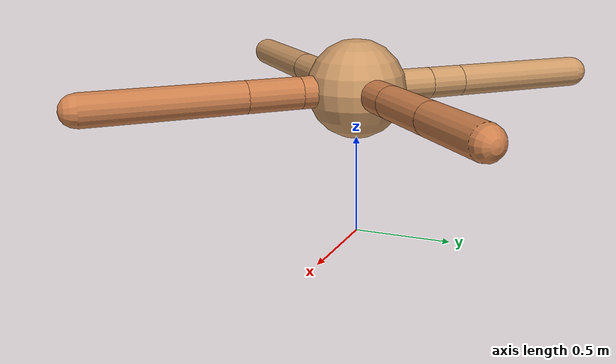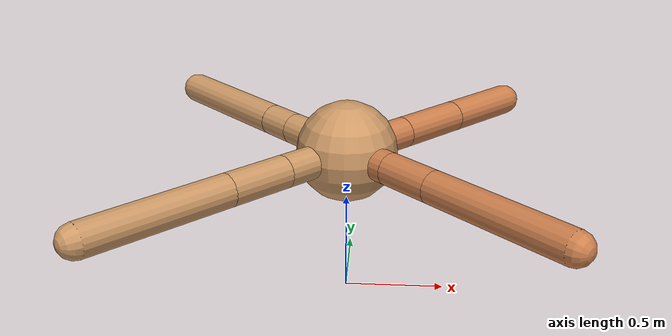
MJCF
<mujoco model="ant">
  <compiler angle="degree" coordinate="local" inertiafromgeom="true" />
  <option integrator="RK4" timestep="0.01" />
  <custom>
    <numeric data="0.0 0.0 0.55 1.0 0.0 0.0 0.0 0.0 1.0 0.0 -1.0 0.0 -1.0 0.0 1.0" name="init_qpos" />
  </custom>
  <default>
    <joint armature="1" damping="1" limited="true" />
    <geom conaffinity="0" condim="3" density="5.0" friction="1.5 0.1 0.1" margin="0.01" rgba="0.8 0.6 0.4 1" />
  </default>
  <worldbody>
    <body name="torso" pos="0 0 0.75">
      <geom name="torso_geom" pos="0 0 0" size="0.25" type="sphere" />

      <body name="front_left_leg" pos="0 0 0">
        <geom fromto="0.0 0.0 0.0 0.2756044750866342 0.2756044750866342 0.0" name="aux_1_geom" size="0.08" type="capsule" rgba=".8 .5 .3 1" />
        <body name="aux_1" pos="0.2756044750866342 0.2756044750866342 0.0">
          <joint axis="0 0 1" name="hip_1" pos="0.0 0.0 0.0" range="-40 40" type="hinge" />
          <geom fromto="0.0 0.0 0.0 0.26281574916136974 0.26281574916136974 0.0" name="left_leg_geom" size="0.08" type="capsule" rgba=".8 .5 .3 1" />
          <body pos="0.26281574916136974 0.26281574916136974 0.0" name="front_left_foot">
            <joint axis="-1 1 0" name="ankle_1" pos="0.0 0.0 0.0" range="30 100" type="hinge" />
            <geom fromto="0.0 0.0 0.0 0.30635514226499394 0.30635514226499394 0.0" name="left_ankle_geom" size="0.08" type="capsule" rgba=".8 .5 .3 1" />
          </body>
        </body>
      </body>
      <body name="front_right_leg" pos="0 0 0">
        <geom fromto="0.0 0.0 0.0 -0.28629753425841636 0.28629753425841636 0.0" name="aux_2_geom" size="0.08" type="capsule" />
        <body name="aux_2" pos="-0.28629753425841636 0.28629753425841636 0.0">
          <joint axis="0 0 1" name="hip_2" pos="0.0 0.0 0.0" range="-40 40" type="hinge" />
          <geom fromto="0.0 0.0 0.0 -0.12861113859641501 0.12861113859641501 0.0" name="right_leg_geom" size="0.08" type="capsule" />
          <body pos="-0.12861113859641501 0.12861113859641501 0.0" name="front_right_foot">
            <joint axis="1 1 0" name="ankle_2" pos="0.0 0.0 0.0" range="-100 -30" type="hinge" />
            <geom fromto="0.0 0.0 0.0 -0.5132246866809007 0.5132246866809007 0.0" name="right_ankle_geom" size="0.08" type="capsule" />
          </body>
        </body>
      </body>
      <body name="left_back_leg" pos="0 0 0">
        <geom fromto="0.0 0.0 0.0 -0.27913389625838864 -0.27913389625838864 0.0" name="aux_3_geom" size="0.08" type="capsule" />
        <body name="aux_3" pos="-0.27913389625838864 -0.27913389625838864 0.0">
          <joint axis="0 0 1" name="hip_3" pos="0.0 0.0 0.0" range="-40 40" type="hinge" />
          <geom fromto="0.0 0.0 0.0 -0.22517941402515362 -0.22517941402515362 0.0" name="back_leg_geom" size="0.08" type="capsule" />
          <body pos="-0.22517941402515362 -0.22517941402515362 0.0" name="left_back_foot">
            <joint axis="-1 1 0" name="ankle_3" pos="0.0 0.0 0.0" range="-100 -30" type="hinge" />
            <geom fromto="0.0 0.0 0.0 -0.5226054424330957 -0.5226054424330957 0.0" name="third_ankle_geom" size="0.08" type="capsule" />
          </body>
        </body>
      </body>
      <body name="right_back_leg" pos="0 0 0">
        <geom fromto="0.0 0.0 0.0 0.21255054264899603 -0.21255054264899603 0.0" name="aux_4_geom" size="0.08" type="capsule" rgba=".8 .5 .3 1" />
        <body name="aux_4" pos="0.21255054264899603 -0.21255054264899603 0.0">
          <joint axis="0 0 1" name="hip_4" pos="0.0 0.0 0.0" range="-40 40" type="hinge" />
          <geom fromto="0.0 0.0 0.0 0.1925009021590284 -0.1925009021590284 0.0" name="rightback_leg_geom" size="0.08" type="capsule" rgba=".8 .5 .3 1" />
          <body pos="0.1925009021590284 -0.1925009021590284 0.0" name="right_back_foot">
            <joint axis="1 1 0" name="ankle_4" pos="0.0 0.0 0.0" range="30 100" type="hinge" />
            <geom fromto="0.0 0.0 0.0 0.5410755443279348 -0.5410755443279348 0.0" name="fourth_ankle_geom" size="0.08" type="capsule" rgba=".8 .5 .3 1" />
          </body>
        </body>
      </body>
    </body>
  </worldbody>
  <actuator>
    <motor ctrllimited="true" ctrlrange="-1.0 1.0" joint="hip_4" gear="150" />
    <motor ctrllimited="true" ctrlrange="-1.0 1.0" joint="ankle_4" gear="150" />
    <motor ctrllimited="true" ctrlrange="-1.0 1.0" joint="hip_1" gear="150" />
    <motor ctrllimited="true" ctrlrange="-1.0 1.0" joint="ankle_1" gear="150" />
    <motor ctrllimited="true" ctrlrange="-1.0 1.0" joint="hip_2" gear="150" />
    <motor ctrllimited="true" ctrlrange="-1.0 1.0" joint="ankle_2" gear="150" />
    <motor ctrllimited="true" ctrlrange="-1.0 1.0" joint="hip_3" gear="150" />
    <motor ctrllimited="true" ctrlrange="-1.0 1.0" joint="ankle_3" gear="150" />
  </actuator>
</mujoco>
